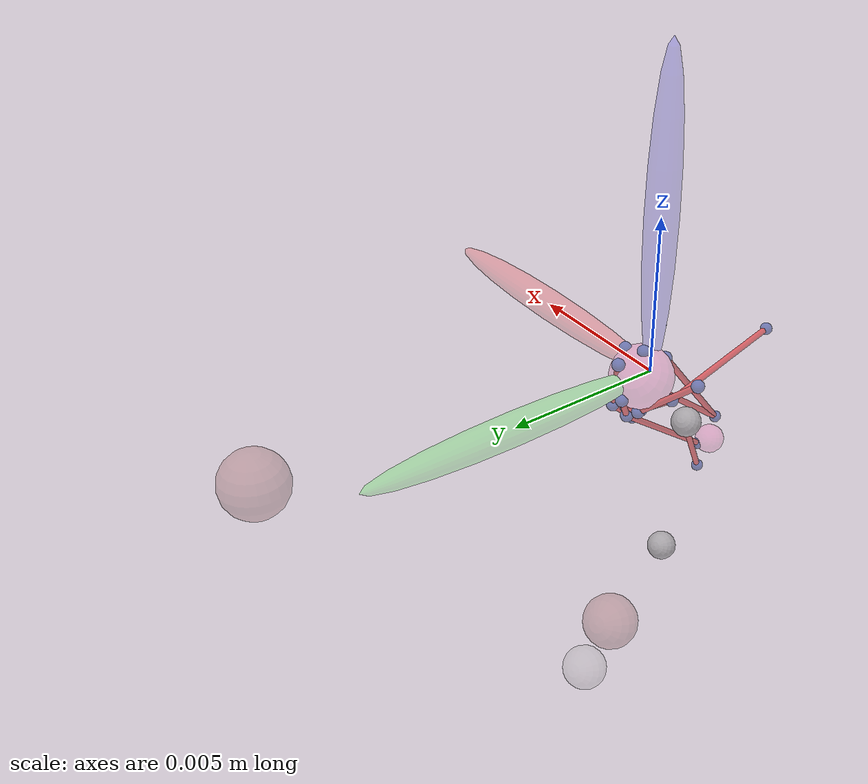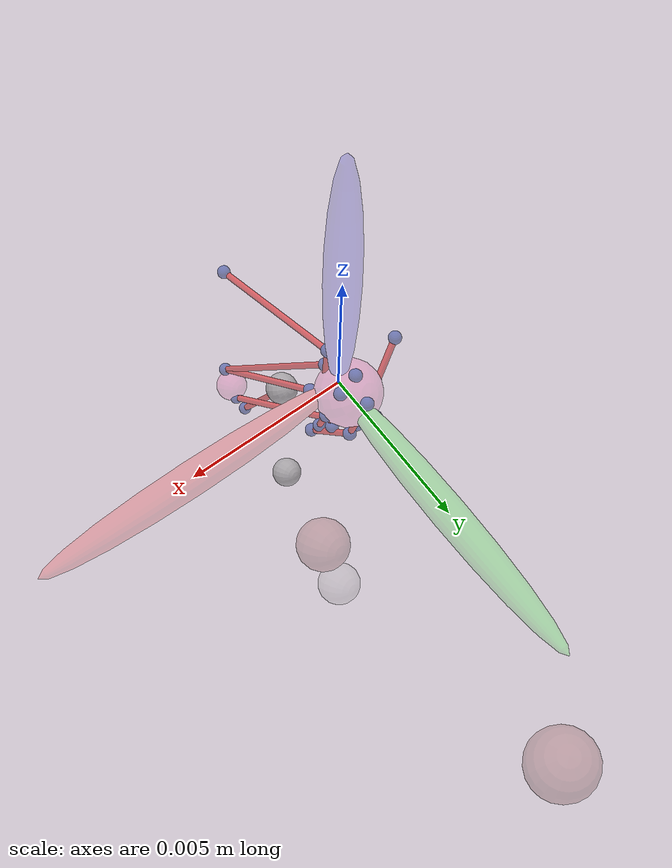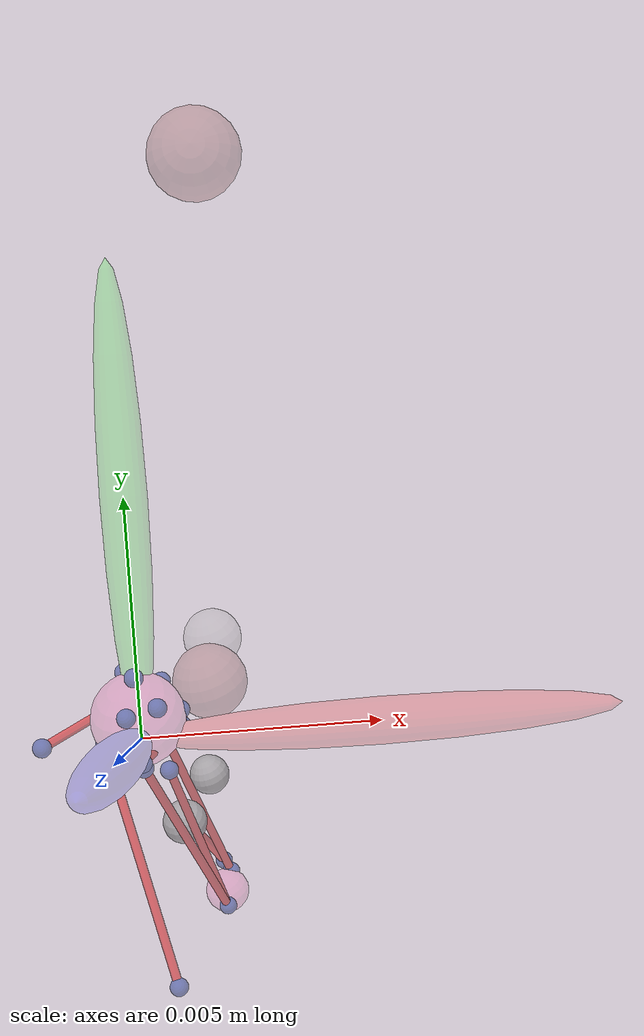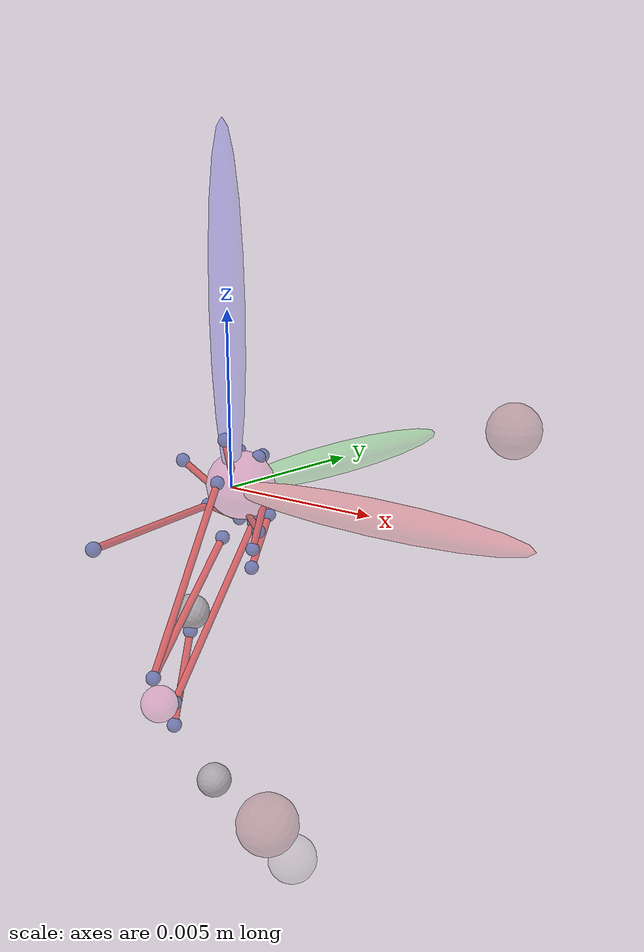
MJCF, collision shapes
<?xml version="1.0" encoding="utf-8"?>
<mujoco model="mouse">
	<compiler angle="degree">
		<lengthrange mode="muscle" timestep="0"/>
	</compiler>
	<option integrator="RK4" timestep="0.001" gravity="0 0 -9.81" solver="CG" iterations="6" ls_iterations="6"></option>
	<default>
	<joint limited="true" solreflimit="0.01 1" solimplimit="0.99 0.9999 0" armature="8e-06" damping="0.004" stiffness="0.001"/>
	</default>
	<size njmax="1000" nconmax="400" nkey="1" nuser_jnt="1"/>

	<visual>
		<scale framelength="0.5" framewidth="0.01"/>
	</visual>

	<default>
		<muscle ctrllimited="true" ctrlrange="0 1"/>
	</default>

	<asset>
		<material name="target" rgba="0.59999999999999998 0.29999999999999999 0.29999999999999999 0.29999999999999999"/>
		<texture type="skybox" builtin="gradient" rgb1="1 1 1" rgb2="0.6 0.8 1" width="256" height="1536"/>
		<texture name="grid" type="2d" builtin="checker" width="512" height="512" rgb1=".1 .2 .3" rgb2=".2 .3 .4"/>
		<material name="grid" texture="grid" texrepeat="1 1" texuniform="true" reflectance=".2"/>
		<mesh file="/root/vast/eric/vnl-ray/vnl_ray/mouse_forelimb/assets_mousereach/mesh/Bone_Scapula_right_v3.stl"/>
		<mesh file="/root/vast/eric/vnl-ray/vnl_ray/mouse_forelimb/assets_mousereach/mesh/Bone_Humerus_right_v3.stl"/>
		<mesh file="/root/vast/eric/vnl-ray/vnl_ray/mouse_forelimb/assets_mousereach/mesh/Bone_Clavicle_right_v3.stl"/>
		<mesh file="/root/vast/eric/vnl-ray/vnl_ray/mouse_forelimb/assets_mousereach/mesh/Bone_Ulna_right_v3.stl"/>
		<mesh file="/root/vast/eric/vnl-ray/vnl_ray/mouse_forelimb/assets_mousereach/mesh/Bone_Radius_right_v3.stl"/>
		<mesh file="/root/vast/eric/vnl-ray/vnl_ray/mouse_forelimb/assets_mousereach/mesh/Bone_Segments_Hand.stl"/>

	</asset>
	<!--This stuff can all be left alone-->
	<worldbody>
		<light directional="true"/>
		<body name="ground" euler="0 0 0">
			<camera name="my_camera" pos="0.04 .004 0.037" fovy="20" quat="0.6532815 0.2705981 0.2705981 0.6532815"/>
			<camera name="my_camera1" pos="0.04 .004 0.037" fovy="20" quat="0.6532815 0.2705981 0.2705981 0.6532815"/>
			<geom name="target" type="sphere" size="0.001" material="target" pos="0.002 0.012 0.0" contype="0" conaffinity="0"/>
			<!-- x-axis in red-->
			<geom type="ellipsoid" size=".0005" rgba="1 0 0 .1" fromto="0 0 0 .01 0 0"  contype="0" conaffinity="0"/>
			<!-- y-axis in green-->
			<geom type="ellipsoid" size=".0005" rgba="0 1 0 .1" fromto="0 0 0 0 .01 0"  contype="0" conaffinity="0"/>
			<!-- z-axis in blue-->
			<geom type="ellipsoid" size=".0005" rgba="0 0 1 .1" fromto="0 0 0 0 0 .01"  contype="0" conaffinity="0"/>

			<!--SOB Clavicle-->
			<body name="clavicle" pos="0 0 0" euler="0 0 0">
				<!--Mesh Geom-->
				<geom type="mesh" mesh="Bone_Clavicle_right_v3" pos="0 0 0.0005"  contype="0" conaffinity="0"/>

				<!--Muscle Attachment-->
				<!--Pec Clavicular Head-->
				<site name="Pec_C_Origin" pos="-0.002 0 0.0005" rgba=".1 .2 .6 .5" size="0.0002"/>
				<!--Anterior Deltoid-->
				<site name="AD_Origin" pos="-0.000 0.0013 0.0007" rgba=".1 .2 .6 .5" size="0.0002"/>

				<!--SOB Scapula-->
				<body name="scapula" pos="-0.0001 -0.0001 0.0005" euler="-30 -15 0">
					<!--Mesh Geom-->
					<geom type="mesh" mesh="Bone_Scapula_right_v3" pos="0.0 0.0 0.0"  contype="0" conaffinity="0"/>

					<!--Muscle Attachement-->
					<!--Latissimus Dorsi-->
					<site name="Lat_Origin" pos="-0.0005 -0.004 -0.0035" rgba=".1 .2 .6 .5" size="0.0002"/>
					<!--Posterior Deltoid-->
					<site name="PD_Origin" pos="0.0004 -0.0007 0.0006" rgba=".1 .2 .6 .5" size="0.0002"/>
					<!--Middle Deltoid-->
					<site name="MD_Origin" pos="0.0007 0.0005 0.0005" rgba=".1 .2 .6 .5" size="0.0002"/>

					<!--Triceps Lateral Head-->
					<site name="Triceps_Long_Origin" pos="0 -0.0003 -0.0005" rgba=".1 .2 .6 .5" size="0.0002"/>
					<!--Biceps Long Head-->
					<site name="Biceps_Long_Origin" pos=".0001 0.0003 0.0007" rgba=".1 .2 .6 .5" size="0.0002"/>

					<!--SOB Humerus-->
					<body name="humerus" pos="0 0.0007 -0.0002" euler="-15 0 0">
						<!-- Glenohumeral (aka shoulder) Joint-->
						<site name="shoulder_joint_viz_large" pos="0 0 0" rgba="1 .2 .6 .2" size="0.0010"/>
						<inertial pos="-0.0005 0.0003 -0.004" mass="0.0001258" diaginertia="3e-8 3e-8 3e-8"/>
						<site name="interial_center_humerus" pos="-0.0005 0.0003 -0.004" rgba=".6 .6 .6 .6" size="0.0005"/>
												<!--Mesh Geom-->
						<geom type="mesh" mesh="Bone_Humerus_right_v3" pos="0.0 0.0 0.0"  contype="0" conaffinity="0"/>

						<joint name="sh_elv" type="hinge" pos="0 0 0" axis="0 1 0" damping="0.02" range="-70 0" limited="true"/>
						<!-- Extension Joint: Yaw around Z-axis -->
						<joint name="sh_extension" type="hinge" pos="0 0 0" axis="0 0 1" damping="0.02" range="-70 40" limited="true"/>
						<!-- Rotation Joint: Roll around X-axis -->
						<joint name="sh_rotation" type="hinge" pos="0 0 0" axis="1 0 0" damping="0.02" range="-25 89" limited="true"/>

						<!--Attachement-->
						<!--Pec Clavicular Head-->
						<site name="Pec_C_P2" pos="-0.0005 0.0009 -0.0003" rgba=".1 .2 .6 .5" size="0.0002"/>
						<site name="Pec_C_Insertion" pos="-0.000 0.001 -0.0005" rgba=".1 .2 .6 .5" size="0.0002"/>

						<!--Latissimus Dorsi-->
						<site name="Lat_P2" pos="-0.001 0.000 -0.0006" rgba=".1 .2 .6 .5" size="0.0002"/>
						<site name="Lat_Insertion" pos="-0.0004 0.0008 -0.0006" rgba=".1 .2 .6 .5" size="0.0002"/>

						<!--Anterior Deltoid-->
						<site name="AD_P2" pos="0.0003 0.0012 -0.0003" rgba=".1 .2 .6 .5" size="0.0002"/>
						<site name="AD_Insertion" pos="0.0003 0.0012 -0.0021" rgba=".1 .2 .6 .5" size="0.0002"/>

						<!--Posterior Deltoid-->
						<site name="PD_P2" pos="0.0003 -0.0003 -0.0006" rgba=".1 .2 .6 .5" size="0.0002"/>
						<site name="PD_Insertion" pos="0.0003 0.001 -0.001" rgba=".1 .2 .6 .5" size="0.0002"/>

						<!--Middle Deltoid-->
						<site name="MD_P2" pos="0.0008 0.0003 -0.0003" rgba=".1 .2 .6 .5" size="0.0002"/>
						<site name="MD_Insertion" pos="0.0003 0.001 -0.0016" rgba=".1 .2 .6 .5" size="0.0002"/>

						<!--Triceps Lateral Head-->
						<site name="Triceps_Lateral_Origin" pos="0.000 -0.000 -0.0018" rgba=".1 .2 .6 .5" size="0.0002"/>

						<!--Brachialis-->
						<site name="Brachialis_Origin" pos="-0.0005 0.0005 -0.0045" rgba=".1 .2 .6 .5" size="0.0002"/>

						<!--Biceps Long Head-->
						<site name="Biceps_Long_P2" pos="-0.0002 0.0009 0.0005" rgba=".1 .2 .6 .5" size="0.0002"/>
						<site name="Biceps_Long_P3" pos="-0.0002 0.0012 -0.0005" rgba=".1 .2 .6 .5" size="0.0002"/>

						<!--SOB Ulna-->
						<body name="ulna" pos="-0.0005 0.0003 -0.0068" euler="-15 0 0">
							<!--Mesh Geom-->
							<geom type="mesh" mesh="Bone_Ulna_right_v3" pos="0.0 0.0 0.0"  contype="0" conaffinity="0"/>

							<!-- Elbow Joint -->
							<joint name="elbow" pos="0 0 0" axis="1 0 0" stiffness="0.000001" damping="0.00001" range="-80 90" limited="true"/>
							<inertial pos="-0.0009 0.004 0.0005" mass="0.0001258" diaginertia="3e-8 3e-8 3e-8"/>
							<site name="elbow_joint_viz_large" pos="0 0 0" rgba="1 .2 .6 .2" size="0.0005"/>
							<site name="interial_center_ulna" pos="-0.0009 0.004 0.0005" rgba=".6 .6 .6 .6" size="0.0005"/>

							<!--Attachement-->
							<!--Triceps Lateral Head-->
							<site name="Triceps_Long_Insertion" pos="0.0002 -0.0008 0.0002" rgba=".1 .2 .6 .5" size="0.0002"/>

							<!--Triceps Lateral Head-->
							<site name="Triceps_Lateral_Insertion" pos="0.0002 -0.0008 0.0002" rgba=".1 .2 .6 .5" size="0.0002"/>

							<!--Brachialis-->
							<site name="Brachialis_Insertion" pos="-0.0002 0.001 0.0001" rgba=".1 .2 .6 .5" size="0.0002"/>

							<!--SOB Radius-->
							<body name="radius" pos="0.00035 0.0002 0.0002" euler="0 0 0">
								<!--Mesh Geom-->
								<geom type="mesh" mesh="Bone_Radius_right_v3" pos="0.0 0.0 0.0"  contype="0" conaffinity="0"/>

								<!--Attachement-->
								<!--Biceps Long Head-->
								<site name="Biceps_Long_Insertion" pos="-0.0002 0.0001 0.0001" rgba=".1 .2 .6 .5" size="0.0002"/>
								<body name="hand" pos="-0.0015 0.007 0.001" euler="0 0 0">
										<geom type="mesh" mesh="Bone_Segments_Hand" pos=".009 -.006 -0.0055" euler="-20 -50 -75"  contype="0" conaffinity="0"/>
										<geom name="finger_tip" type="sphere" size="0.001" material="target" pos="0.0 0.0 0.0" contype="0" conaffinity="0"/>
										<inertial pos="-0.0002 0.002 0.0001" mass=" 0.00071" diaginertia="7e-09 7e-09 7e-09"/>
										<site name="interial_center_hand" pos="-0.0002 0.002 0.0001" rgba=".6 .6 .6 .1" size="0.0008"/>
								</body>
							</body>
						</body>

					</body>

				</body>
				<!--EOB Ground-->
			</body>
		</body>
	</worldbody>

	<tendon>
		<!--Shoulder Muscles-->
		<!--Pectoralis Major Clavicular Head (shoulder internal rotator + adductor(?) + flexor(?))-->
		<spatial width=".0001" rgba=".9 0 0 .5" name="Pec_C">
			<site site="Pec_C_Insertion"/>
			<site site="Pec_C_P2"/>
			<site site="Pec_C_Origin"/>
		</spatial>

		<!--Latissimus Dorsi (shoulder internal rotator + adductor(?) + extensor(?))-->
		<spatial width=".0001" rgba=".9 0 0 .5" name="Lat">
			<site site="Lat_Insertion"/>
			<site site="Lat_P2"/>
			<site site="Lat_Origin"/>
		</spatial>

		<!--Anterior Deltoid (shoulder flexor + internal rotator)-->
		<spatial width=".0001" rgba=".9 0 0 .5" name="AD">
			<site site="AD_Insertion"/>
			<site site="AD_P2"/>
			<site site="AD_Origin"/>
		</spatial>

		<!--Posterior Deltoid (shoulder extensor + external rotator)-->
		<spatial width=".0001" rgba=".9 0 0 .5" name="PD">
			<site site="PD_Insertion"/>
			<site site="PD_P2"/>
			<site site="PD_Origin"/>
		</spatial>

		<!--Middle Deltoid (shoulder abductor)-->
		<spatial width=".0001" rgba=".9 0 0 .5" name="MD">
			<site site="MD_Insertion"/>
			<site site="MD_P2"/>
			<site site="MD_Origin"/>
		</spatial>

		<!--Elbow Muscles-->
		<!--Triceps Lateral Head (mono-articular elbow extensor)-->
		<spatial width=".0001" rgba=".9 0 0 .5" name="Triceps_Lateral">
			<site site="Triceps_Lateral_Insertion"/>
			<site site="Triceps_Lateral_Origin"/>
		</spatial>

		<!--Triceps Long Head (bi-articular shoulder and elbow extensor)-->
		<spatial width=".0001" rgba=".9 0 0 .5" name="Triceps_Long">
			<site site="Triceps_Long_Insertion"/>
			<site site="Triceps_Long_Origin"/>
		</spatial>

		<!--Brachialis (mono-articular elbow flexor)-->
		<spatial width=".0001" rgba=".9 0 0 .5" name="Brachialis">
			<site site="Brachialis_Insertion"/>
			<site site="Brachialis_Origin"/>
		</spatial>

		<!--Biceps Long Head (bi-articular shoulder and elbow flexor)-->
		<spatial width=".0001" rgba=".9 0 0 .5" name="Biceps_Long">
			<site site="Biceps_Long_Insertion"/>
			<site site="Biceps_Long_P3"/>
			<site site="Biceps_Long_P2"/>

			<site site="Biceps_Long_Origin"/>
		</spatial>

	</tendon>
	<actuator>
		<!--Muscle operating range ("range") was adjusted for each joint such that 1) optimal muscle length falls within the minimum and maximum muscle lengths determined by Mujoco & 2) tendon length is positive-->
		<!--Shoulder muscles-->
		<muscle name="Pec_C" tendon="Pec_C" force=".2" vmax="15" range="0.5 1.2" fpmax=".01"/>
		<muscle name="Lat" tendon="Lat" force=".2" vmax="15" range="0.75 1.05" fpmax=".01"/>
		<muscle name="PD" tendon="PD" force=".2" vmax="15" range="0.6 1.1" fpmax=".01"/>
		<muscle name="AD" tendon="AD" force=".2" vmax="15" range="0.8   1.1" lengthrange=".0001 .01" fpmax=".01"/>
		<muscle name="MD" tendon="MD" force=".2" vmax="15" range="0.55 1.2" fpmax=".01"/>

		<!--Elbow muscles-->
		<muscle name="Triceps_Lateral" tendon="Triceps_Lateral" force=".2" vmax="15" range="0.82 1.05" fpmax=".01"/>
		<muscle name="Triceps_Long" tendon="Triceps_Long" force=".2" vmax="15" range="0.7 1.1" fpmax=".01"/>
		<muscle name="Brachialis" tendon="Brachialis" force=".2" vmax="15" range="0.6 1.2" fpmax=".01"/>
		<muscle name="Biceps_Long" tendon="Biceps_Long" force=".2" vmax="15" range="0.7 1.05" fpmax=".01"/>
	</actuator>

</mujoco>
